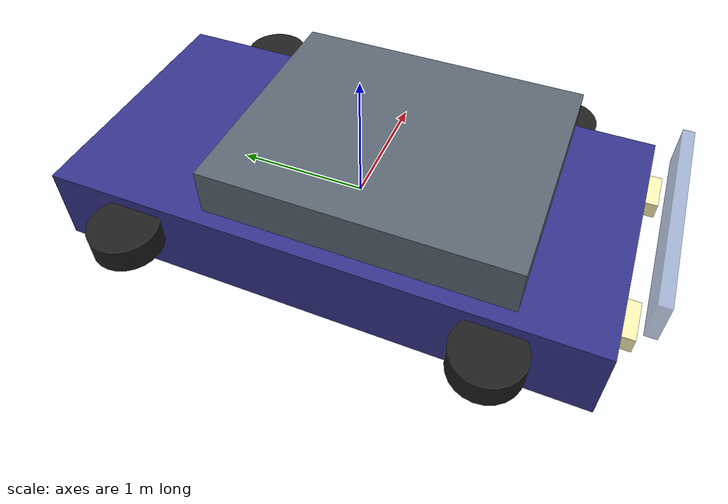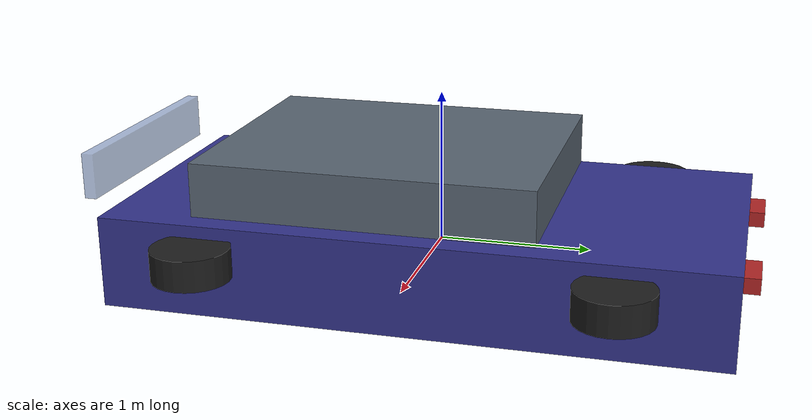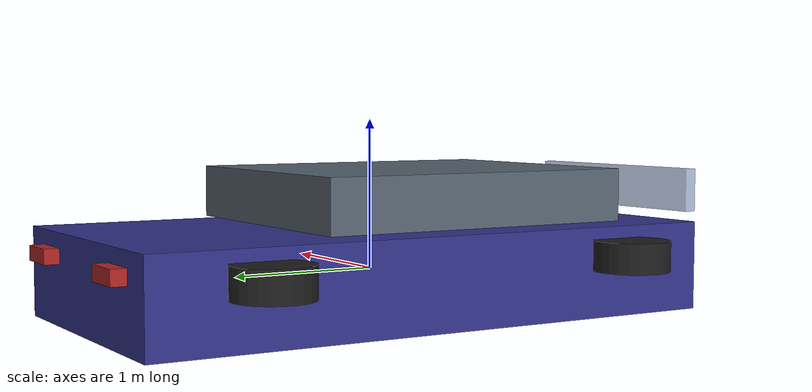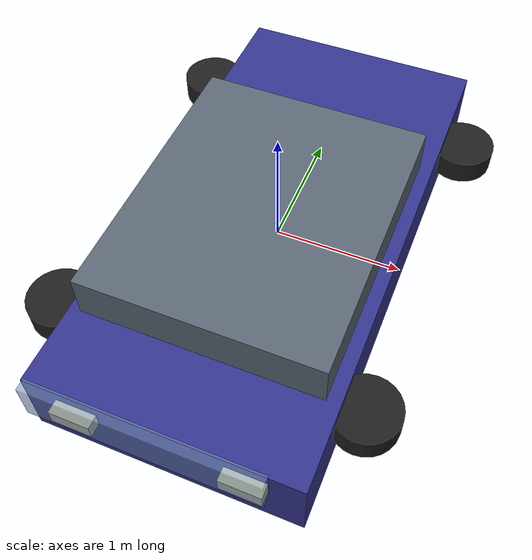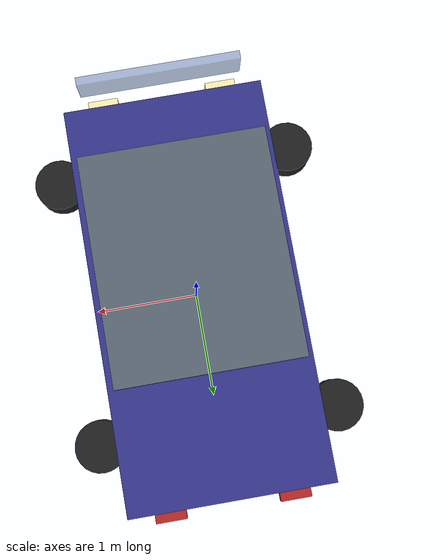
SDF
<?xml version="1.0"?>
<sdf version="1.9">
  <model name="sedan_car">
    <static>true</static>
    <link name="body">
      <collision name="col">
        <geometry><box><size>2 4 0.6</size></box></geometry>
      </collision>
      <!-- Main body -->
      <visual name="body_vis">
        <geometry><box><size>2 4 0.6</size></box></geometry>
        <material>
          <ambient>0.15 0.15 0.5 1</ambient>
          <diffuse>0.2 0.2 0.55 1</diffuse>
          <specular>0.5 0.5 0.5 1</specular>
        </material>
      </visual>
      <!-- Cabin/roof -->
      <visual name="cabin">
        <pose>0 -0.3 0.5 0 0 0</pose>
        <geometry><box><size>1.8 2.2 0.35</size></box></geometry>
        <material>
          <ambient>0.3 0.35 0.4 1</ambient>
          <diffuse>0.35 0.4 0.45 1</diffuse>
          <specular>0.4 0.4 0.4 1</specular>
        </material>
      </visual>
      <!-- Windows -->
      <visual name="windshield">
        <pose>0 -2.15 0.5 0 0 0</pose>
        <geometry><box><size>1.6 0.08 0.3</size></box></geometry>
        <material>
          <ambient>0.4 0.5 0.7 0.6</ambient>
          <diffuse>0.45 0.55 0.75 0.6</diffuse>
          <specular>0.5 0.5 0.5 1</specular>
        </material>
      </visual>
      <!-- 4 wheels -->
      <visual name="wheel_fl">
        <pose>-1.15 1.3 0.12 0 0 0</pose>
        <geometry><cylinder><radius>0.25</radius><length>0.2</length></cylinder></geometry>
        <material>
          <ambient>0.08 0.08 0.08 1</ambient>
          <diffuse>0.12 0.12 0.12 1</diffuse>
          <specular>0.05 0.05 0.05 1</specular>
        </material>
      </visual>
      <visual name="wheel_fr">
        <pose>1.15 1.3 0.12 0 0 0</pose>
        <geometry><cylinder><radius>0.25</radius><length>0.2</length></cylinder></geometry>
        <material>
          <ambient>0.08 0.08 0.08 1</ambient>
          <diffuse>0.12 0.12 0.12 1</diffuse>
          <specular>0.05 0.05 0.05 1</specular>
        </material>
      </visual>
      <visual name="wheel_rl">
        <pose>-1.15 -1.3 0.12 0 0 0</pose>
        <geometry><cylinder><radius>0.25</radius><length>0.2</length></cylinder></geometry>
        <material>
          <ambient>0.08 0.08 0.08 1</ambient>
          <diffuse>0.12 0.12 0.12 1</diffuse>
          <specular>0.05 0.05 0.05 1</specular>
        </material>
      </visual>
      <visual name="wheel_rr">
        <pose>1.15 -1.3 0.12 0 0 0</pose>
        <geometry><cylinder><radius>0.25</radius><length>0.2</length></cylinder></geometry>
        <material>
          <ambient>0.08 0.08 0.08 1</ambient>
          <diffuse>0.12 0.12 0.12 1</diffuse>
          <specular>0.05 0.05 0.05 1</specular>
        </material>
      </visual>
      <!-- Headlights -->
      <visual name="headlight_l">
        <pose>-0.6 -2.05 0.15 0 0 0</pose>
        <geometry><box><size>0.3 0.1 0.12</size></box></geometry>
        <material>
          <ambient>1 0.9 0.6 1</ambient>
          <diffuse>1 0.95 0.7 1</diffuse>
          <emissive>0.3 0.25 0.1 1</emissive>
        </material>
      </visual>
      <visual name="headlight_r">
        <pose>0.6 -2.05 0.15 0 0 0</pose>
        <geometry><box><size>0.3 0.1 0.12</size></box></geometry>
        <material>
          <ambient>1 0.9 0.6 1</ambient>
          <diffuse>1 0.95 0.7 1</diffuse>
          <emissive>0.3 0.25 0.1 1</emissive>
        </material>
      </visual>
      <!-- Tail lights -->
      <visual name="taillight_l">
        <pose>-0.6 2.05 0.15 0 0 0</pose>
        <geometry><box><size>0.3 0.1 0.1</size></box></geometry>
        <material>
          <ambient>0.6 0.1 0.1 1</ambient>
          <diffuse>0.7 0.15 0.15 1</diffuse>
          <emissive>0.2 0.05 0.05 1</emissive>
        </material>
      </visual>
      <visual name="taillight_r">
        <pose>0.6 2.05 0.15 0 0 0</pose>
        <geometry><box><size>0.3 0.1 0.1</size></box></geometry>
        <material>
          <ambient>0.6 0.1 0.1 1</ambient>
          <diffuse>0.7 0.15 0.15 1</diffuse>
          <emissive>0.2 0.05 0.05 1</emissive>
        </material>
      </visual>
    </link>
  </model>
</sdf>
